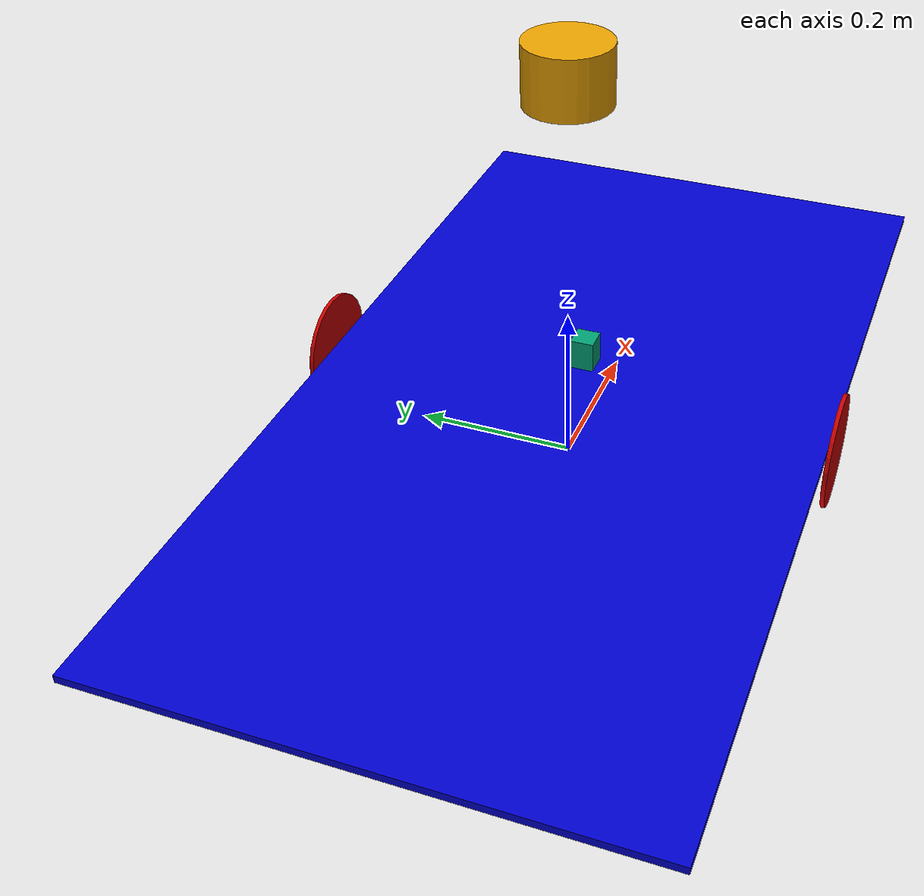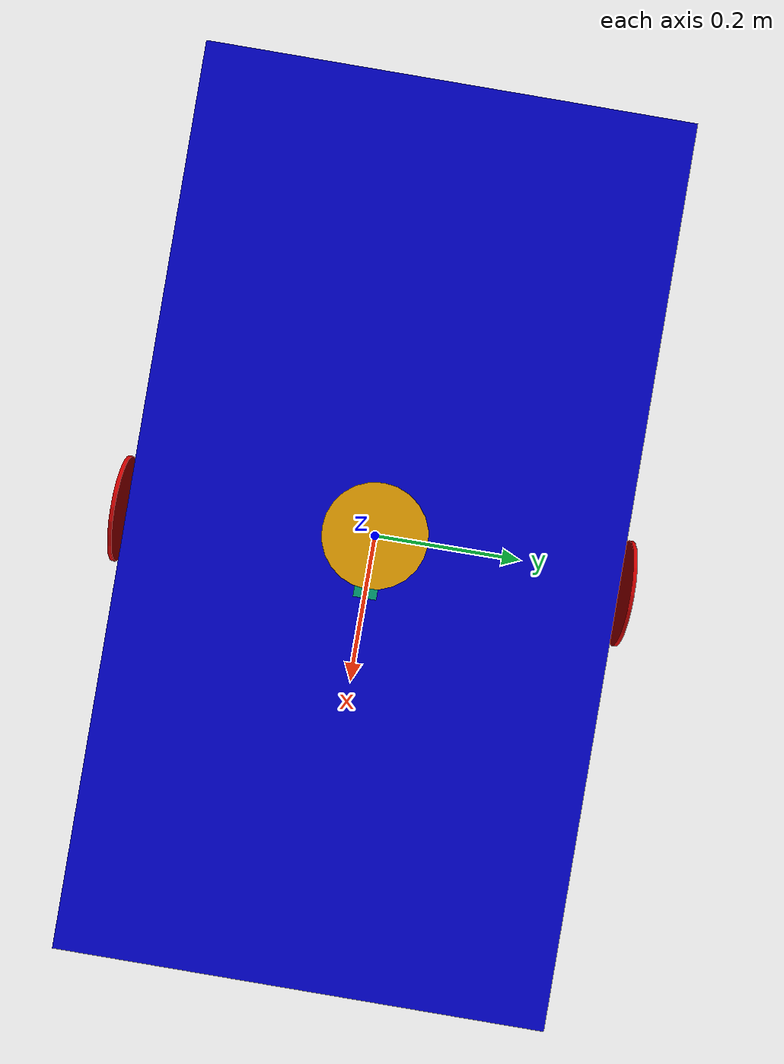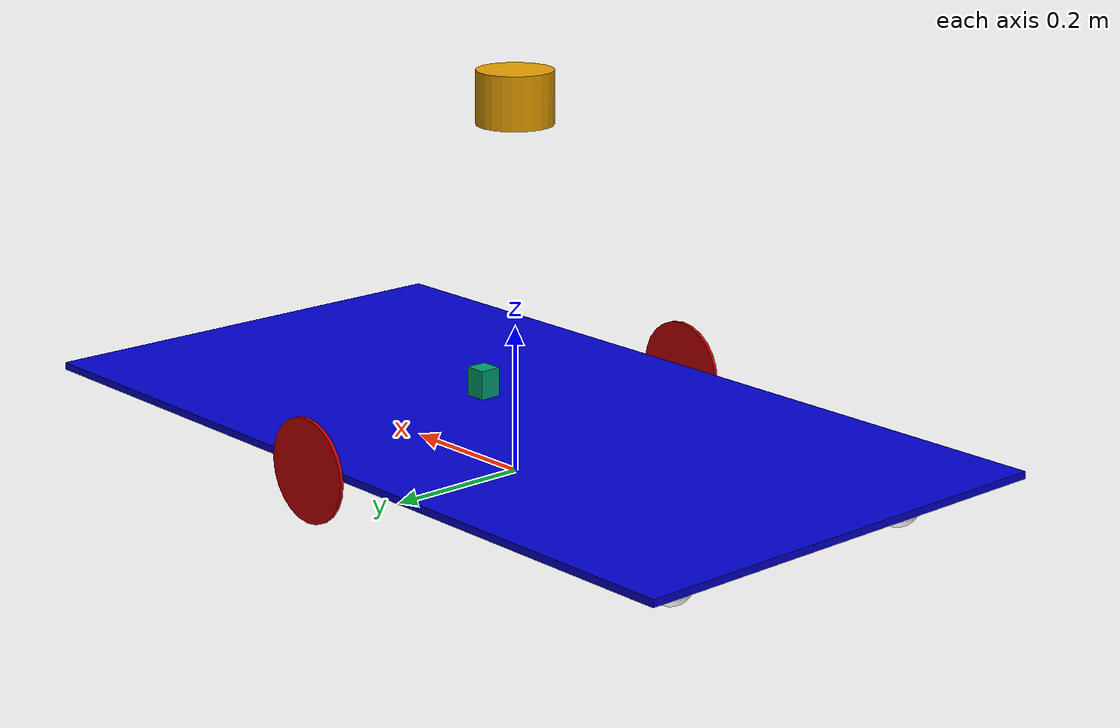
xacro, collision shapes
<?xml version="1.0"?>
<robot
  xmlns:xacro="http://www.ros.org/wiki/xacro" name="kbot">

  <xacro:include filename="$(find kbot_description)/urdf/kbot_gazebo_plugins.xacro"/>

  <!-- aggiunti per il velodyne -->
  <xacro:arg name="gpu" default="false"/>
  <xacro:property name="gpu" value="$(arg gpu)" />
  <xacro:arg name="organize_cloud" default="false"/>
  <xacro:property name="organize_cloud" value="$(arg organize_cloud)" />

  <xacro:include filename="$(find velodyne_description)/urdf/VLP-16.urdf.xacro"/>
  <xacro:VLP-16 parent="base_link" name="velodyne" topic="/velodyne_points" organize_cloud="${organize_cloud}" hz="10" samples="440" gpu="${gpu}">
    <origin xyz="0 0 0.4" rpy="0 0 0" />
  </xacro:VLP-16>

  <!-- aggiunti per il velodyne -->

  <xacro:property name="base_width" value="0.65"/>
  <xacro:property name="base_len" value="1.20"/>
  <xacro:property name="wheel_radius" value="0.07"/>
  <xacro:property name="base_wheel_gap" value="0.007"/>
  <xacro:property name="wheel_separation" value="0.15"/>
  <xacro:property name="wheel_joint_offset" value="0.02"/>
  <xacro:property name="caster_wheel_radius" value="0.03"/>

  <xacro:property name="laser_size_x" value="0.03"/>
  <xacro:property name="laser_size_y" value="0.03"/>
  <xacro:property name="laser_size_z" value="0.04"/>
  <xacro:property name="laser_origin_x" value="0.065"/>
  <xacro:property name="laser_origin_y" value="0"/>
  <xacro:property name="laser_origin_z" value="0.035"/>

  <material name="blue">
    <color rgba="0 0 0.8 1"/>
  </material>
  <material name="black">
    <color rgba="0 0 0 1"/>
  </material>
  <material name="white">
    <color rgba="1 1 1 1"/>
  </material>
  <material name="red">
    <color rgba="0.8 0.0 0.0 1.0"/>
  </material>

  <xacro:macro name="box_inertia" params="m w h d">
    <inertial>
      <mass value="${m}"/>
      <inertia ixx="${m / 12.0 * (d*d + h*h)}" ixy="0.0" ixz="0.0" iyy="${m / 12.0 * (w*w + h*h)}" iyz="0.0" izz="${m / 12.0 * (w*w + d*d)}"/>
    </inertial>
  </xacro:macro>

  <link name="base_footprint">
    <xacro:box_inertia m="20" w="0.001" h="0.001" d="0.001"/>
    <visual>
        <origin xyz="0 0 0" rpy="0 0 0" />
        <geometry>
            <box size="0.001 0.001 0.001" />
        </geometry>
    </visual>
  </link>

  <link name="base_link">
    <xacro:box_inertia m="10" w="${base_len}" h="${base_width}" d="0.01"/>
    <visual>
      <geometry>
        <box size="${base_len} ${base_width} 0.01"/>
      </geometry>
      <material name="blue"/>
    </visual>
    <collision>
      <geometry>
        <box size="${base_len} ${base_width} 0.01"/>
      </geometry>
    </collision>
  </link>

  <joint name="base_link_joint" type="fixed">
    <origin xyz="0 0 ${wheel_radius + 0.005}" rpy="0 0 0" />
    <parent link="base_footprint"/>
    <child link="base_link" />
  </joint>

  <xacro:macro name="cylinder_inertia" params="m r h">
    <inertial>
      <mass value="${m}"/>
      <inertia ixx="${m*(3*r*r+h*h)/12}" ixy = "0" ixz = "0" iyy="${m*(3*r*r+h*h)/12}" iyz = "0" izz="${m*r*r/2}"/>
    </inertial>
  </xacro:macro>

  <xacro:macro name="wheel" params="prefix reflect">
    <link name="${prefix}_wheel">
      <visual>
        <origin xyz="0 0 0" rpy="${pi/2} 0 0"/>
        <geometry>
          <cylinder radius="${wheel_radius}" length="0.005"/>
        </geometry>
	<material name="red"/>
      </visual>
      <collision>
        <origin xyz="0 0 0" rpy="${pi/2} 0 0"/>
        <geometry>
          <cylinder radius="${wheel_radius}" length="0.005"/>
        </geometry>
      </collision>
      <xacro:cylinder_inertia m="10" r="${wheel_radius}" h="0.005"/>
    </link>

    <joint name="${prefix}_wheel_joint" type="continuous">
      <axis xyz="0 1 0" rpy="0 0 0" />
      <parent link="base_link"/>
      <child link="${prefix}_wheel"/>
      <origin xyz="${wheel_joint_offset} ${((base_width/2)+base_wheel_gap)*reflect} -0.005" rpy="0 0 0"/>
    </joint>
  </xacro:macro>

  <xacro:wheel prefix="left" reflect="1"/>
  <xacro:wheel prefix="right" reflect="-1"/>

  <xacro:macro name="sphere_inertia" params="m r">
    <inertial>
      <mass value="${m}"/>
      <inertia ixx="${2.0*m*(r*r)/5.0}" ixy="0.0" ixz="0.0" iyy="${2.0*m*(r*r)/5.0}" iyz="0.0" izz="${2.0*m*(r*r)/5.0}"/>
    </inertial>
  </xacro:macro>

   <link name="caster_wheel1">
    <visual>
      <origin xyz="0 0 0" rpy="0 0 0"/>
      <geometry>
        <sphere radius="${caster_wheel_radius}"/>
      </geometry>
      <material name="white"/>
    </visual>
    <collision>
      <origin xyz="0 0 0" rpy="0 0 0"/>
      <geometry>
        <sphere radius="${caster_wheel_radius}"/>
      </geometry>
    </collision>
    <xacro:sphere_inertia m="5" r="${caster_wheel_radius}"/>
  </link>

  <joint name="caster_wheel_joint1" type="continuous">
    <axis xyz="1 0 0" rpy="0 0 0" />
    <parent link="base_link"/>
    <child link="caster_wheel1"/>
    <origin xyz="-0.5 0.2 -${caster_wheel_radius+0.005}" rpy="0 0 0"/>
  </joint>

  <link name="caster_wheel2">
    <visual>
      <origin xyz="0 0 0" rpy="0 0 0"/>
      <geometry>
        <sphere radius="${caster_wheel_radius}"/>
      </geometry>
      <material name="white"/>
    </visual>
    <collision>
      <origin xyz="0 0 0" rpy="0 0 0"/>
      <geometry>
        <sphere radius="${caster_wheel_radius}"/>
      </geometry>
    </collision>
    <xacro:sphere_inertia m="5" r="${caster_wheel_radius}"/>
  </link>

  <joint name="caster_wheel_joint2" type="continuous">
    <axis xyz="1 0 0" rpy="0 0 0" />
    <parent link="base_link"/>
    <child link="caster_wheel2"/>
    <origin xyz="-0.5 -0.2 -${caster_wheel_radius+0.005}" rpy="0 0 0"/>
  </joint>

<link name="caster_wheel3">
    <visual>
      <origin xyz="0 0 0" rpy="0 0 0"/>
      <geometry>
        <sphere radius="${caster_wheel_radius}"/>
      </geometry>
      <material name="white"/>
    </visual>
    <collision>
      <origin xyz="0 0 0" rpy="0 0 0"/>
      <geometry>
        <sphere radius="${caster_wheel_radius}"/>
      </geometry>
    </collision>
    <xacro:sphere_inertia m="5" r="${caster_wheel_radius}"/>
  </link>

  <joint name="caster_wheel_joint3" type="continuous">
    <axis xyz="1 0 0" rpy="0 0 0" />
    <parent link="base_link"/>
    <child link="caster_wheel3"/>
    <origin xyz="0.5 0.2 -${caster_wheel_radius+0.005}" rpy="0 0 0"/>
  </joint>

<link name="caster_wheel4">
    <visual>
      <origin xyz="0 0 0" rpy="0 0 0"/>
      <geometry>
        <sphere radius="${caster_wheel_radius}"/>
      </geometry>
      <material name="white"/>
    </visual>
    <collision>
      <origin xyz="0 0 0" rpy="0 0 0"/>
      <geometry>
        <sphere radius="${caster_wheel_radius}"/>
      </geometry>
    </collision>
    <xacro:sphere_inertia m="5" r="${caster_wheel_radius}"/>
  </link>

  <joint name="caster_wheel_joint4" type="continuous">
    <axis xyz="1 0 0" rpy="0 0 0" />
    <parent link="base_link"/>
    <child link="caster_wheel4"/>
    <origin xyz="0.5 -0.2 -${caster_wheel_radius+0.005}" rpy="0 0 0"/>
  </joint>

  <link name="sensor_laser">
    <visual>
     <geometry>
       <mesh filename="package://kbot_description/meshes/hokuyo.dae"/>
     </geometry>
   </visual>
    <collision>
      <geometry>
        <box size="${laser_size_x} ${laser_size_y} ${laser_size_z}"/>
      </geometry>
    </collision>
    <xacro:box_inertia m="0.2" w="${laser_size_x}" h="${laser_size_y}" d="${laser_size_z}"/>
  </link>

  <gazebo reference="sensor_laser">
    <sensor type="ray" name="laser_sensor">
      <pose>0 0 0 0 0 0</pose>
      <visualize>false</visualize>
      <update_rate>40</update_rate>
      <ray>
        <scan>
          <horizontal>
            <samples>720</samples>
            <resolution>1</resolution>
            <min_angle>-3.14</min_angle>
            <max_angle>3.14</max_angle>
          </horizontal>
        </scan>
        <range>
          <min>0.75</min>
          <max>30.0</max>
          <resolution>0.01</resolution>
        </range>
        <noise>
          <type>gaussian</type>
          <mean>0.0</mean>
          <stddev>0.01</stddev>
        </noise>
      </ray>
      <plugin name="laser_controller" filename="libgazebo_ros_laser.so">
        <topicName>/kbot/sensor_laser/scan</topicName>
        <frameName>sensor_laser</frameName>
      </plugin>
    </sensor>
  </gazebo>

  <joint name="sensor_laser_joint" type="fixed">
    <origin xyz="${laser_origin_x} ${laser_origin_y} ${laser_origin_z}" rpy="0 0 0" />
    <parent link="base_link"/>
    <child link="sensor_laser" />
  </joint>

</robot>

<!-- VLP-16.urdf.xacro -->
<robot xmlns:xacro="http://www.ros.org/wiki/xacro" name="VLP-16">
  <xacro:property name="M_PI" value="3.1415926535897931" />
  <xacro:macro name="VLP-16" params="*origin is_sim:=true parent:=base_link name:=velodyne tf_prefix:='' topic:=/velodyne_points organize_cloud:=false hz:=10 lasers:=16 samples:=1875 collision_range:=0.3 min_range:=0.0 max_range:=100.0 noise:=0.008 min_angle:=-${M_PI} max_angle:=${M_PI} gpu:=false">

    <joint name="${name}_base_mount_joint" type="fixed">
      <xacro:insert_block name="origin" />
      <parent link="${parent}"/>
      <child link="${name}_base_link"/>
    </joint>

    <link name="${name}_base_link">
      <inertial>
        <mass value="0.83"/>
        <origin xyz="0 0 0.03585"/>
        <inertia ixx="${(0.83 * (3.0*0.0516*0.0516 + 0.0717*0.0717)) / 12.0}" ixy="0" ixz="0"
          iyy="${(0.83 * (3.0*0.0516*0.0516 + 0.0717*0.0717)) / 12.0}" iyz="0"
          izz="${0.5 * 0.83 * (0.0516*0.0516)}"/>
      </inertial>
      <visual>
        <geometry>
          <mesh filename="package://velodyne_description/meshes/VLP16_base_1.dae" />
        </geometry>
      </visual>
      <visual>
        <geometry>
          <mesh filename="package://velodyne_description/meshes/VLP16_base_2.dae" />
        </geometry>
      </visual>
      <collision>
        <origin rpy="0 0 0" xyz="0 0 0.03585"/>
        <geometry>
          <cylinder radius="0.0516" length="0.0717"/>
        </geometry>
      </collision>
    </link>

    <joint name="${name}_base_scan_joint" type="fixed" >
      <origin xyz="0 0 0.0377" rpy="0 0 0" />
      <parent link="${name}_base_link" />
      <child link="${name}"/>
    </joint>

    <link name="${name}">
      <inertial>
        <mass value="0.01"/>
        <origin xyz="0 0 0"/>
        <inertia ixx="1e-7" ixy="0" ixz="0" iyy="1e-7" iyz="0" izz="1e-7"/>
      </inertial>
      <visual>
        <origin xyz="0 0 -0.0377" />
        <geometry>
          <mesh filename="package://velodyne_description/meshes/VLP16_scan.dae" />
        </geometry>
      </visual>
      <collision>
        <geometry>
          <sphere radius="0"/>
        </geometry>
      </collision>
    </link>

    <!-- Gazebo requires the velodyne_gazebo_plugins package -->
    <xacro:if value="${is_sim}">
        <gazebo reference="${name}">
            <xacro:if value="${gpu}">
                <sensor type="gpu_ray" name="${name}-VLP16">
                <pose>0 0 0 0 0 0</pose>
                <visualize>false</visualize>
                <update_rate>${hz}</update_rate>
                <ray>
                    <scan>
                    <horizontal>
                        <samples>${samples}</samples>
                        <resolution>1</resolution>
                        <min_angle>${min_angle}</min_angle>
                        <max_angle>${max_angle}</max_angle>
                    </horizontal>
                    <vertical>
                        <samples>${lasers}</samples>
                        <resolution>1</resolution>
                        <min_angle>-${15.0*M_PI/180.0}</min_angle>
                        <max_angle> ${15.0*M_PI/180.0}</max_angle>
                    </vertical>
                    </scan>
                    <range>
                    <min>${collision_range}</min>
                    <max>${max_range+1}</max>
                    <resolution>0.001</resolution>
                    </range>
                    <noise>
                    <type>gaussian</type>
                    <mean>0.0</mean>
                    <stddev>0.0</stddev>
                    </noise>
                </ray>
                <plugin name="gazebo_ros_laser_controller" filename="libgazebo_ros_velodyne_laser.so">
                    <ros>
                    <namespace>/${name}</namespace>
                    <remapping>~/out:=${topic}</remapping>
                    </ros>
                    <tf_prefix>${tf_prefix}</tf_prefix>
                    <frame_name>${name}</frame_name>
                    <organize_cloud>${organize_cloud}</organize_cloud>
                    <min_range>${min_range}</min_range>
                    <max_range>${max_range}</max_range>
                    <gaussian_noise>${noise}</gaussian_noise>
                </plugin>
                </sensor>
            </xacro:if>
            <xacro:unless value="${gpu}">
                <sensor type="ray" name="${name}-VLP16">
                <pose>0 0 0 0 0 0</pose>
                <visualize>false</visualize>
                <update_rate>${hz}</update_rate>
                <ray>
                    <scan>
                    <horizontal>
                        <samples>${samples}</samples>
                        <resolution>1</resolution>
                        <min_angle>${min_angle}</min_angle>
                        <max_angle>${max_angle}</max_angle>
                    </horizontal>
                    <vertical>
                        <samples>${lasers}</samples>
                        <resolution>1</resolution>
                        <min_angle>-${15.0*M_PI/180.0}</min_angle>
                        <max_angle> ${15.0*M_PI/180.0}</max_angle>
                    </vertical>
                    </scan>
                    <range>
                    <min>${collision_range}</min>
                    <max>${max_range+1}</max>
                    <resolution>0.001</resolution>
                    </range>
                    <noise>
                    <type>gaussian</type>
                    <mean>0.0</mean>
                    <stddev>0.0</stddev>
                    </noise>
                </ray>
                <plugin name="gazebo_ros_laser_controller" filename="libgazebo_ros_velodyne_laser.so">
                    <ros>
                    <namespace>/${name}</namespace>
                    <remapping>~/out:=${topic}</remapping>
                    </ros>
                    <tf_prefix>${tf_prefix}</tf_prefix>
                    <frame_name>${name}</frame_name>
                    <organize_cloud>${organize_cloud}</organize_cloud>
                    <min_range>${min_range}</min_range>
                    <max_range>${max_range}</max_range>
                    <gaussian_noise>${noise}</gaussian_noise>
                </plugin>
                </sensor>
            </xacro:unless>
        </gazebo>
    </xacro:if>

  </xacro:macro>
</robot>
